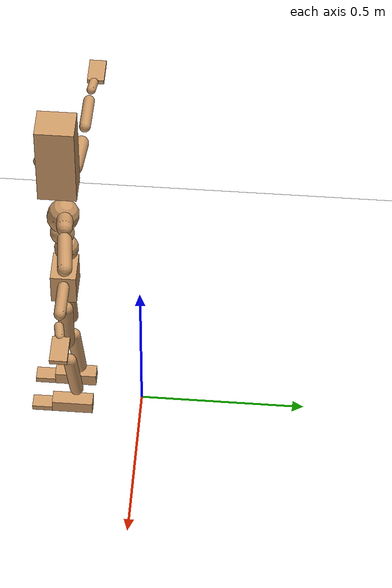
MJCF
<mujoco model="humanoid">
  <option integrator="implicitfast" />

  <visual>
    <global offwidth="1280" offheight="960" />
    <headlight active="1" ambient="0.34 0.34 0.34" diffuse="0.5 0.5 0.5" />
  </visual>

  <default>
    <joint damping="2" stiffness="2" armature="0.01" limited="true" solimplimit="0 .99 .01" />
    <geom condim="1" friction="0.7 0.005 0.0001" solimp=".99 .99 .003" solref="0.015 1" margin="0.001" rgba="0.8 0.6 .4 1" />
    <default class="smplcontact">
      <geom condim="3" friction="1. 0.005 0.0001" solref="0.015 1" solimp="0.98 0.98 0.001" priority="1" />
    </default>
    <default class="stiff_medium">
      <joint stiffness="10" />
    </default>
    <default class="stiff_medium_higher">
      <joint stiffness="50" />
    </default>
    <default class="stiff_high">
      <joint stiffness="100" />
    </default>
  </default>

  <asset>
    <texture type="skybox" builtin="gradient" rgb1="0.99 0.99 0.99" rgb2="0.608 0.828 0.892" width="100" />
    <texture builtin="flat" height="1278" mark="cross" markrgb="1 1 1" name="texgeom" random="0.01" rgb1="0.8 0.6 0.4" rgb2="0.8 0.6 0.4" type="cube" width="127" />
    <texture name="texplane" type="2d" builtin="checker" markrgb="1 1 1" rgb1="0.756 0.772 0.76" rgb2="0.6 0.6 0.6" width="100" height="100" />
    <material name="MatPlane" reflectance="0.5" texture="texplane" texrepeat="1 1" texuniform="true" />
    <material name="geom" texture="texgeom" texuniform="true" />
  </asset>

  <worldbody>
    <light name="tracking_light" pos="0 0 7" dir="0 0 -1" directional="true" cutoff="100" exponent="1" diffuse="1 1 1" specular="0.1 0.1 0.1" mode="trackcom" />
    <camera name="back" pos="0 3 2.4" xyaxes="-1 0 0 0 -1 2" mode="trackcom" />
    <camera name="side" pos="-3 0 2.4" xyaxes="0 -1 0 1 0 2" mode="trackcom" />
    <camera name="front_side" pos="-2.8 -2.8 0.8" xyaxes="0.5 -0.5 0 0.1 0.1 1" mode="trackcom" />
    <geom condim="3" name="floor" pos="0 0 0" rgba="1 1 1 1" size="100 100 .2" type="plane" material="MatPlane" />
    <body name="Pelvis" pos="-0.0018 -0.2233 0.564995" euler="90 0 0">
      <site name="Pelvis" size="0.01" />
      <freejoint name="Pelvis" />
      <geom type="box" pos="0 -0.00877437 -0.0025025" size="0.0486395 0.0523562 0.037765" quat="1.0000 0.0000 0.0000 0.0000" density="3165.830099" name="Pelvis" />
      <body name="L_Hip" pos="0.0316225 -0.0662791 -0.003094">
        <joint name="L_Hip_x" type="hinge" pos="0 0 0" axis="1 0 0" stiffness="10" range="-160.0 22.92" class="stiff_medium" damping="15" />
        <joint name="L_Hip_y" type="hinge" pos="0 0 0" axis="0 1 0" stiffness="10" range="-70.0 70.0" class="stiff_medium" damping="10" />
        <joint name="L_Hip_z" type="hinge" pos="0 0 0" axis="0 0 1" stiffness="10" range="-28.65 90.0" class="stiff_medium" damping="10" />
        <geom type="capsule" density="2040.816327" fromto="0.00413352 -0.0451067 -0.000541102 0.0164623 -0.180543 -0.00216489" size="0.0232101" name="L_Hip" />
        <body name="L_Knee" pos="0.0205958 -0.225649 -0.00270599">
          <joint name="L_Knee_x" type="hinge" pos="0 0 0" axis="1 0 0" range="-5.16 171.89" damping="8" />
          <joint name="L_Knee_y" type="hinge" pos="0 0 0" axis="0 1 0" range="-4.58 6.88" damping="8" />
          <joint name="L_Knee_z" type="hinge" pos="0 0 0" axis="0 0 1" range="-6.88 4.58" damping="8" />
          <geom type="capsule" density="1234.567901" fromto="-0.00163119 -0.0478698 -0.00524694 -0.0065627 -0.191485 -0.0210638" size="0.0204173" name="L_Knee" />
          <body name="L_Ankle" pos="-0.00819389 -0.239355 -0.0263108">
            <joint name="L_Ankle_x" type="hinge" pos="0 0 0" axis="1 0 0" range="-45.84 45.84" class="stiff_medium" damping="6" />
            <joint name="L_Ankle_y" type="hinge" pos="0 0 0" axis="0 1 0" range="-74.48 22.92" class="stiff_medium" damping="3" />
            <joint name="L_Ankle_z" type="hinge" pos="0 0 0" axis="0 0 1" range="-4.58 4.58" class="stiff_medium" damping="6" />
            <geom type="box" pos="0.0106015 -0.0108745 0.0176382" size="0.0219765 0.021112 0.0619525" quat="1.0000 0.0000 0.0000 0.0000" density="449.071558" name="L_Ankle" class="smplcontact" />
            <body name="L_Toe" pos="0.012012 -0.025389 0.0869522">
              <joint name="L_Toe_x" type="hinge" pos="0 0 0" axis="1 0 0" range="-91.67 22.92" />
              <joint name="L_Toe_y" type="hinge" pos="0 0 0" axis="0 1 0" range="-4.58 4.58" />
              <joint name="L_Toe_z" type="hinge" pos="0 0 0" axis="0 0 1" range="-4.58 4.58" />
              <geom type="box" pos="-0.001365 0.0025025 0.0180756" size="0.021749 0.0091 0.0361511" quat="1.0000 0.0000 0.0000 0.0000" density="423.206892" name="L_Toe" class="smplcontact" />
            </body>
          </body>
        </body>
      </body>
      <body name="R_Hip" pos="-0.0308035 -0.0656265 -0.0019565">
        <joint name="R_Hip_x" type="hinge" pos="0 0 0" axis="1 0 0" stiffness="10" range="-160.0 22.92" class="stiff_medium" damping="15" />
        <joint name="R_Hip_y" type="hinge" pos="0 0 0" axis="0 1 0" stiffness="10" range="-70.0 70.0" class="stiff_medium" damping="10" />
        <joint name="R_Hip_z" type="hinge" pos="0 0 0" axis="0 0 1" stiffness="10" range="-90.0 28.65" class="stiff_medium" damping="10" />
        <geom type="capsule" density="2040.816327" fromto="-0.0046153 -0.0460091 -0.00107493 -0.0183874 -0.184091 -0.00426236" size="0.0228704" name="R_Hip" />
        <body name="R_Knee" pos="-0.0230027 -0.2301 -0.00533729">
          <joint name="R_Knee_x" type="hinge" pos="0 0 0" axis="1 0 0" range="-5.16 171.89" damping="8" />
          <joint name="R_Knee_y" type="hinge" pos="0 0 0" axis="0 1 0" range="-6.88 4.58" damping="8" />
          <joint name="R_Knee_z" type="hinge" pos="0 0 0" axis="0 0 1" range="-4.58 6.88" damping="8" />
          <geom type="capsule" density="1234.567901" fromto="0.00190993 -0.0479339 -0.005098 0.00756312 -0.191669 -0.0203135" size="0.0204173" name="R_Knee" />
          <body name="R_Ankle" pos="0.00947305 -0.239603 -0.0254115">
            <joint name="R_Ankle_x" type="hinge" pos="0 0 0" axis="1 0 0" range="-45.84 45.84" class="stiff_medium" damping="6" />
            <joint name="R_Ankle_y" type="hinge" pos="0 0 0" axis="0 1 0" range="-22.92 74.48" class="stiff_medium" damping="3" />
            <joint name="R_Ankle_z" type="hinge" pos="0 0 0" axis="0 0 1" range="-4.58 4.58" class="stiff_medium" damping="6" />
            <geom type="box" pos="-0.009646 -0.007917 0.0186586" size="0.0219765 0.021749 0.0630458" quat="1.0000 0.0000 0.0000 0.0000" density="434.700981" name="R_Ankle" class="smplcontact" />
            <body name="R_Toe" pos="-0.011557 -0.0218855 0.0898676">
              <joint name="R_Toe_x" type="hinge" pos="0 0 0" axis="1 0 0" range="-91.67 22.92" />
              <joint name="R_Toe_y" type="hinge" pos="0 0 0" axis="0 1 0" range="-4.58 4.58" />
              <joint name="R_Toe_z" type="hinge" pos="0 0 0" axis="0 0 1" range="-4.58 4.58" />
              <geom type="box" pos="0.001911 0.0020475 0.016545" size="0.0217945 0.009828 0.0359325" quat="1.0000 0.0000 0.0000 0.0000" density="407.384095" name="R_Toe" class="smplcontact" />
            </body>
          </body>
        </body>
      </body>
      <body name="Torso" pos="-0.0011375 0.0790419 -0.0121485">
        <joint name="Torso_x" type="hinge" pos="0 0 0" axis="1 0 0" range="-25.78 57.3" class="stiff_medium" damping="15" />
        <joint name="Torso_y" type="hinge" pos="0 0 0" axis="0 1 0" range="-57.3 57.3" class="stiff_high" damping="20" />
        <joint name="Torso_z" type="hinge" pos="0 0 0" axis="0 0 1" range="-34.38 34.38" class="stiff_high" damping="20" />
        <geom type="capsule" density="2040.816327" fromto="0.00177028 0.0447061 0.000354055 0.0021379 0.054632 0.000427581" size="0.0354817" name="Torso" />
        <body name="Spine" pos="0.00390919 0.0994115 0.000781838">
          <joint name="Spine_x" type="hinge" pos="0 0 0" axis="1 0 0" stiffness="10" range="-25.78 57.3" class="stiff_medium" damping="15" />
          <joint name="Spine_y" type="hinge" pos="0 0 0" axis="0 1 0" stiffness="10" range="-57.3 57.3" class="stiff_high" damping="8" />
          <joint name="Spine_z" type="hinge" pos="0 0 0" axis="0 0 1" stiffness="20" range="-34.38 34.38" class="stiff_high" damping="12" />
          <geom type="capsule" density="2040.816327" fromto="0.000445413 0.0174703 0.00844322 0.000518938 0.0213671 0.0103549" size="0.0348357" name="Spine" />
          <body name="Chest" pos="0.000964351 0.0388374 0.0187981">
            <joint name="Chest_x" type="hinge" pos="0 0 0" axis="1 0 0" stiffness="10" range="-25.78 57.3" class="stiff_medium" damping="15" />
            <joint name="Chest_y" type="hinge" pos="0 0 0" axis="0 1 0" stiffness="10" range="-57.3 57.3" class="stiff_high" damping="8" />
            <joint name="Chest_z" type="hinge" pos="0 0 0" axis="0 0 1" stiffness="20" range="-34.38 34.38" class="stiff_high" damping="12" />
            <geom type="capsule" density="2040.816327" fromto="-0.000538815 0.0501242 -0.0128009 -0.00061234 0.0612266 -0.0156683" size="0.0462323" name="Chest" />
            <body name="Neck" pos="-0.00167444 0.156455 -0.0347125">
              <joint name="Neck_x" type="hinge" pos="0 0 0" axis="1 0 0" range="-28.65 57.3" class="stiff_medium_higher" damping="10" />
              <joint name="Neck_y" type="hinge" pos="0 0 0" axis="0 1 0" range="-40.11 40.11" class="stiff_medium_higher" damping="10" />
              <joint name="Neck_z" type="hinge" pos="0 0 0" axis="0 0 1" range="-40.11 40.11" class="stiff_medium_higher" damping="10" />
              <geom type="capsule" density="1000" fromto="0.000738218 0.00947903 0.00750125 0.00299766 0.0379043 0.0299499" size="0.0199383" name="Neck" />
              <body name="Head" pos="0.00378067 0.0473715 0.0373961">
                <joint name="Head_x" type="hinge" pos="0 0 0" axis="1 0 0" range="-28.65 57.3" class="stiff_medium_higher" damping="2" />
                <joint name="Head_y" type="hinge" pos="0 0 0" axis="0 1 0" range="-40.11 40.11" class="stiff_medium_higher" damping="2" />
                <joint name="Head_z" type="hinge" pos="0 0 0" axis="0 0 1" range="-40.11 40.11" class="stiff_medium_higher" damping="2" />
                <geom type="box" pos="-0.00307482 0.102213 -0.00849236" size="0.0443653 0.134651 0.0556396" quat="1.0000 0.0000 0.0000 0.0000" density="1018.069894" name="Head" />
                <geom type="capsule" name="nose" size="0.014642 0.007321" pos="0 0.0816774 0.036605" quat="1 0 0 0" mass="0" contype="0" conaffinity="0" />
              </body>
            </body>
            <body name="L_Thorax" pos="0.0361373 0.0895219 -0.0243524">
              <joint name="L_Thorax_x" type="hinge" pos="0 0 0" axis="1 0 0" range="-10.89 4.58" class="stiff_medium_higher" damping="20" />
              <joint name="L_Thorax_y" type="hinge" pos="0 0 0" axis="0 1 0" range="-28.65 17.19" class="stiff_medium_higher" damping="20" />
              <joint name="L_Thorax_z" type="hinge" pos="0 0 0" axis="0 0 1" range="-31.51 40.11" class="stiff_medium_higher" damping="20" />
              <geom type="capsule" density="1000" fromto="0.0130174 0.00436296 -0.00127855 0.0520672 0.0174511 -0.0050691" size="0.0233825" name="L_Thorax" />
              <body name="L_Shoulder" pos="0.0650845 0.021814 -0.00634765">
                <joint name="L_Shoulder_x" type="hinge" pos="0 0 0" axis="1 0 0" range="-97.4 97.4" class="stiff_medium" damping="6" />
                <joint name="L_Shoulder_y" type="hinge" pos="0 0 0" axis="0 1 0" range="-108.86 80.21" class="stiff_medium" damping="6" />
                <joint name="L_Shoulder_z" type="hinge" pos="0 0 0" axis="0 0 1" range="-97.4 85.94" class="stiff_medium" damping="6" />
                <geom type="capsule" density="1000" fromto="0.0339231 -0.00168279 -0.00359407 0.135755 -0.0066502 -0.0143786" size="0.0212022" name="L_Shoulder" />
                <body name="L_Elbow" pos="0.169678 -0.00833299 -0.0179726">
                  <joint name="L_Elbow_x" type="hinge" pos="0 0 0" axis="1 0 0" range="-17.19 4.58" damping="5" />
                  <joint name="L_Elbow_y" type="hinge" pos="0 0 0" axis="0 1 0" range="-180.0 17.19" damping="5" />
                  <joint name="L_Elbow_z" type="hinge" pos="0 0 0" axis="0 0 1" range="-100.84 4.58" damping="5" />
                  <geom type="capsule" density="1000" fromto="0.0325496 0.00117591 -0.000138762 0.130329 0.00470538 -0.000596287" size="0.0166091" name="L_Elbow" />
                  <body name="L_Wrist" pos="0.162879 0.00588129 -0.000776059">
                    <joint name="L_Wrist_x" type="hinge" pos="0 0 0" axis="1 0 0" range="-180.0 22.92" />
                    <joint name="L_Wrist_y" type="hinge" pos="0 0 0" axis="0 1 0" range="-17.19 17.19" />
                    <joint name="L_Wrist_z" type="hinge" pos="0 0 0" axis="0 0 1" range="-22.92 22.92" />
                    <geom type="capsule" density="1000" fromto="0.0109798 -0.00105381 -0.00196068 0.0439216 -0.00425649 -0.00784314" size="0.0130412" name="L_Wrist" class="smplcontact" />
                    <body name="L_Hand" pos="0.0548995 -0.00535112 -0.00976248">
                      <joint name="L_Hand_x" type="hinge" pos="0 0 0" axis="1 0 0" range="-17.19 17.19" />
                      <joint name="L_Hand_y" type="hinge" pos="0 0 0" axis="0 1 0" range="-51.57 51.57" />
                      <joint name="L_Hand_z" type="hinge" pos="0 0 0" axis="0 0 1" range="-91.67 91.67" />
                      <geom type="box" pos="0.0357501 0.000455 -0.002639" size="0.0424216 0.007189 0.024479" quat="1.0000 0.0000 0.0000 0.0000" density="400.552564" name="L_Hand" class="smplcontact" />
                    </body>
                  </body>
                </body>
              </body>
            </body>
            <body name="R_Thorax" pos="-0.0379624 0.0880108 -0.026384">
              <joint name="R_Thorax_x" type="hinge" pos="0 0 0" axis="1 0 0" range="-10.89 4.58" class="stiff_medium_higher" damping="20" />
              <joint name="R_Thorax_y" type="hinge" pos="0 0 0" axis="0 1 0" range="-17.19 28.65" class="stiff_medium_higher" damping="20" />
              <joint name="R_Thorax_z" type="hinge" pos="0 0 0" axis="0 0 1" range="-40.11 31.51" class="stiff_medium_higher" damping="20" />
              <geom type="capsule" density="1000" fromto="-0.013731 0.00464853 -0.00129616 -0.0549264 0.0185949 -0.00522975" size="0.0229337" name="R_Thorax" />
              <body name="R_Shoulder" pos="-0.0686655 0.023291 -0.00652668">
                <joint name="R_Shoulder_x" type="hinge" pos="0 0 0" axis="1 0 0" range="-97.4 97.4" class="stiff_medium" damping="6" />
                <joint name="R_Shoulder_y" type="hinge" pos="0 0 0" axis="0 1 0" range="-80.21 108.86" class="stiff_medium" damping="6" />
                <joint name="R_Shoulder_z" type="hinge" pos="0 0 0" axis="0 0 1" range="-85.94 97.4" class="stiff_medium" damping="6" />
                <geom type="capsule" density="1000" fromto="-0.0331391 -0.00175583 -0.00280113 -0.132683 -0.00698469 -0.0111673" size="0.0217763" name="R_Shoulder" />
                <body name="R_Elbow" pos="-0.165821 -0.00869944 -0.0139683">
                  <joint name="R_Elbow_x" type="hinge" pos="0 0 0" axis="1 0 0" range="-17.19 4.58" damping="5" />
                  <joint name="R_Elbow_y" type="hinge" pos="0 0 0" axis="0 1 0" range="-17.19 180.0" damping="5" />
                  <joint name="R_Elbow_z" type="hinge" pos="0 0 0" axis="0 0 1" range="-4.58 100.84" damping="5" />
                  <geom type="capsule" density="1000" fromto="-0.0333998 0.00103004 -0.000719327 -0.133467 0.00403663 -0.00287623" size="0.0167321" name="R_Elbow" />
                  <body name="R_Wrist" pos="-0.166867 0.00506668 -0.00363658">
                    <joint name="R_Wrist_x" type="hinge" pos="0 0 0" axis="1 0 0" range="-180.0 22.92" />
                    <joint name="R_Wrist_y" type="hinge" pos="0 0 0" axis="0 1 0" range="-17.19 17.19" />
                    <joint name="R_Wrist_z" type="hinge" pos="0 0 0" axis="0 0 1" range="-22.92 22.92" />
                    <geom type="capsule" density="1000" fromto="-0.0110465 -0.000791894 -0.00136353 -0.0442497 -0.00321024 -0.00541589" size="0.0133693" name="R_Wrist" class="smplcontact" />
                    <body name="R_Hand" pos="-0.0552933 -0.00400192 -0.00673806">
                      <joint name="R_Hand_x" type="hinge" pos="0 0 0" axis="1 0 0" range="-17.19 17.19" />
                      <joint name="R_Hand_y" type="hinge" pos="0 0 0" axis="0 1 0" range="-51.57 51.57" />
                      <joint name="R_Hand_z" type="hinge" pos="0 0 0" axis="0 0 1" range="-91.67 91.67" />
                      <geom type="box" pos="-0.0335022 -0.0004095 -0.0035945" size="0.0412613 0.007462 0.024843" quat="1.0000 0.0000 0.0000 0.0000" density="403.679611" name="R_Hand" class="smplcontact" />
                    </body>
                  </body>
                </body>
              </body>
            </body>
          </body>
        </body>
      </body>
    </body>
  </worldbody>
  <actuator>
    <general name="L_Hip_x" joint="L_Hip_x" biastype="affine" gainprm="287.33006409732246" biasprm="-215.3247604770444 -180 -2.0" ctrllimited="true" ctrlrange="-1 1" forcerange="-360 360" />
    <general name="L_Hip_y" joint="L_Hip_y" biastype="affine" gainprm="219.9114857512855" biasprm="0.0 -180 -2.0" ctrllimited="true" ctrlrange="-1 1" forcerange="-360 360" />
    <general name="L_Hip_z" joint="L_Hip_z" biastype="affine" gainprm="186.3749841742145" biasprm="96.3683546488669 -180 -2.0" ctrllimited="true" ctrlrange="-1 1" forcerange="-360 360" />
    <general name="L_Knee_x" joint="L_Knee_x" biastype="affine" gainprm="278.10948965903646" biasprm="261.8988715665131 -180 -2.0" ctrllimited="true" ctrlrange="-1 1" forcerange="-360 360" />
    <general name="L_Knee_y" joint="L_Knee_y" biastype="affine" gainprm="18.001325905069514" biasprm="3.612831551628262 -180 -2.0" ctrllimited="true" ctrlrange="-1 1" forcerange="-360 360" />
    <general name="L_Knee_z" joint="L_Knee_z" biastype="affine" gainprm="18.001325905069514" biasprm="-3.612831551628262 -180 -2.0" ctrllimited="true" ctrlrange="-1 1" forcerange="-360 360" />
    <general name="L_Ankle_x" joint="L_Ankle_x" biastype="affine" gainprm="72.00530362027807" biasprm="0.0 -90 -2.0" ctrllimited="true" ctrlrange="-1 1" forcerange="-180 180" />
    <general name="L_Ankle_y" joint="L_Ankle_y" biastype="affine" gainprm="76.49778111491148" biasprm="-40.49512930477244 -90 -2.0" ctrllimited="true" ctrlrange="-1 1" forcerange="-180 180" />
    <general name="L_Ankle_z" joint="L_Ankle_z" biastype="affine" gainprm="7.1942471767206255" biasprm="0.0 -90 -2.0" ctrllimited="true" ctrlrange="-1 1" forcerange="-180 180" />
    <general name="L_Toe_x" joint="L_Toe_x" biastype="affine" gainprm="71.99902043497087" biasprm="-43.19689898685965 -72 -0.8" ctrllimited="true" ctrlrange="-1 1" forcerange="-144 144" />
    <general name="L_Toe_y" joint="L_Toe_y" biastype="affine" gainprm="5.755397741376501" biasprm="0.0 -72 -0.8" ctrllimited="true" ctrlrange="-1 1" forcerange="-144 144" />
    <general name="L_Toe_z" joint="L_Toe_z" biastype="affine" gainprm="5.755397741376501" biasprm="0.0 -72 -0.8" ctrllimited="true" ctrlrange="-1 1" forcerange="-144 144" />
    <general name="R_Hip_x" joint="R_Hip_x" biastype="affine" gainprm="287.33006409732246" biasprm="-215.3247604770444 -180 -2.0" ctrllimited="true" ctrlrange="-1 1" forcerange="-360 360" />
    <general name="R_Hip_y" joint="R_Hip_y" biastype="affine" gainprm="219.9114857512855" biasprm="0.0 -180 -2.0" ctrllimited="true" ctrlrange="-1 1" forcerange="-360 360" />
    <general name="R_Hip_z" joint="R_Hip_z" biastype="affine" gainprm="186.3749841742145" biasprm="-96.3683546488669 -180 -2.0" ctrllimited="true" ctrlrange="-1 1" forcerange="-360 360" />
    <general name="R_Knee_x" joint="R_Knee_x" biastype="affine" gainprm="278.10948965903646" biasprm="261.8988715665131 -180 -2.0" ctrllimited="true" ctrlrange="-1 1" forcerange="-360 360" />
    <general name="R_Knee_y" joint="R_Knee_y" biastype="affine" gainprm="18.001325905069514" biasprm="-3.612831551628262 -180 -2.0" ctrllimited="true" ctrlrange="-1 1" forcerange="-360 360" />
    <general name="R_Knee_z" joint="R_Knee_z" biastype="affine" gainprm="18.001325905069514" biasprm="3.612831551628262 -180 -2.0" ctrllimited="true" ctrlrange="-1 1" forcerange="-360 360" />
    <general name="R_Ankle_x" joint="R_Ankle_x" biastype="affine" gainprm="72.00530362027807" biasprm="0.0 -90 -2.0" ctrllimited="true" ctrlrange="-1 1" forcerange="-180 180" />
    <general name="R_Ankle_y" joint="R_Ankle_y" biastype="affine" gainprm="76.49778111491148" biasprm="40.49512930477244 -90 -2.0" ctrllimited="true" ctrlrange="-1 1" forcerange="-180 180" />
    <general name="R_Ankle_z" joint="R_Ankle_z" biastype="affine" gainprm="7.1942471767206255" biasprm="0.0 -90 -2.0" ctrllimited="true" ctrlrange="-1 1" forcerange="-180 180" />
    <general name="R_Toe_x" joint="R_Toe_x" biastype="affine" gainprm="71.99902043497087" biasprm="-43.19689898685965 -72 -0.8" ctrllimited="true" ctrlrange="-1 1" forcerange="-144 144" />
    <general name="R_Toe_y" joint="R_Toe_y" biastype="affine" gainprm="5.755397741376501" biasprm="0.0 -72 -0.8" ctrllimited="true" ctrlrange="-1 1" forcerange="-144 144" />
    <general name="R_Toe_z" joint="R_Toe_z" biastype="affine" gainprm="5.755397741376501" biasprm="0.0 -72 -0.8" ctrllimited="true" ctrlrange="-1 1" forcerange="-144 144" />
    <general name="Torso_x" joint="Torso_x" biastype="affine" gainprm="174.00234510682668" biasprm="66.0153336274335 -240 -4.0" ctrllimited="true" ctrlrange="-1 1" forcerange="-360 360" />
    <general name="Torso_y" joint="Torso_y" biastype="affine" gainprm="240.0176787342602" biasprm="0.0 -240 -4.0" ctrllimited="true" ctrlrange="-1 1" forcerange="-360 360" />
    <general name="Torso_z" joint="Torso_z" biastype="affine" gainprm="144.01060724055614" biasprm="0.0 -240 -4.0" ctrllimited="true" ctrlrange="-1 1" forcerange="-360 360" />
    <general name="Spine_x" joint="Spine_x" biastype="affine" gainprm="174.00234510682668" biasprm="66.0153336274335 -240 -4.0" ctrllimited="true" ctrlrange="-1 1" forcerange="-360 360" />
    <general name="Spine_y" joint="Spine_y" biastype="affine" gainprm="240.0176787342602" biasprm="0.0 -240 -4.0" ctrllimited="true" ctrlrange="-1 1" forcerange="-360 360" />
    <general name="Spine_z" joint="Spine_z" biastype="affine" gainprm="144.01060724055614" biasprm="0.0 -240 -4.0" ctrllimited="true" ctrlrange="-1 1" forcerange="-360 360" />
    <general name="Chest_x" joint="Chest_x" biastype="affine" gainprm="174.00234510682668" biasprm="66.0153336274335 -240 -4.0" ctrllimited="true" ctrlrange="-1 1" forcerange="-360 360" />
    <general name="Chest_y" joint="Chest_y" biastype="affine" gainprm="240.0176787342602" biasprm="0.0 -240 -4.0" ctrllimited="true" ctrlrange="-1 1" forcerange="-360 360" />
    <general name="Chest_z" joint="Chest_z" biastype="affine" gainprm="144.01060724055614" biasprm="0.0 -240 -4.0" ctrllimited="true" ctrlrange="-1 1" forcerange="-360 360" />
    <general name="Neck_x" joint="Neck_x" biastype="affine" gainprm="27.00198885760427" biasprm="9.000662952534757 -36 -0.8" ctrllimited="true" ctrlrange="-1 1" forcerange="-72 72" />
    <general name="Neck_y" joint="Neck_y" biastype="affine" gainprm="25.20185626709732" biasprm="0.0 -36 -0.8" ctrllimited="true" ctrlrange="-1 1" forcerange="-72 72" />
    <general name="Neck_z" joint="Neck_z" biastype="affine" gainprm="25.20185626709732" biasprm="0.0 -36 -0.8" ctrllimited="true" ctrlrange="-1 1" forcerange="-72 72" />
    <general name="Head_x" joint="Head_x" biastype="affine" gainprm="18.001325905069514" biasprm="6.000441968356505 -24 -0.8" ctrllimited="true" ctrlrange="-1 1" forcerange="-48 48" />
    <general name="Head_y" joint="Head_y" biastype="affine" gainprm="16.801237511398213" biasprm="0.0 -24 -0.8" ctrllimited="true" ctrlrange="-1 1" forcerange="-48 48" />
    <general name="Head_z" joint="Head_z" biastype="affine" gainprm="16.801237511398213" biasprm="0.0 -24 -0.8" ctrllimited="true" ctrlrange="-1 1" forcerange="-48 48" />
    <general name="L_Thorax_x" joint="L_Thorax_x" biastype="affine" gainprm="16.200146117011364" biasprm="-6.6078165480505335 -120 -1.6" ctrllimited="true" ctrlrange="-1 1" forcerange="-240 240" />
    <general name="L_Thorax_y" joint="L_Thorax_y" biastype="affine" gainprm="48.00353574685204" biasprm="-12.00088393671301 -120 -1.6" ctrllimited="true" ctrlrange="-1 1" forcerange="-240 240" />
    <general name="L_Thorax_z" joint="L_Thorax_z" biastype="affine" gainprm="75.00028861670033" biasprm="9.00589894029074 -120 -1.6" ctrllimited="true" ctrlrange="-1 1" forcerange="-240 240" />
    <general name="L_Shoulder_x" joint="L_Shoulder_x" biastype="affine" gainprm="81.5976331892389" biasprm="0.0 -48 -1.6" ctrllimited="true" ctrlrange="-1 1" forcerange="-96 96" />
    <general name="L_Shoulder_y" joint="L_Shoulder_y" biastype="affine" gainprm="79.19745640189629" biasprm="-12.00088393671301 -48 -1.6" ctrllimited="true" ctrlrange="-1 1" forcerange="-96 96" />
    <general name="L_Shoulder_z" joint="L_Shoulder_z" biastype="affine" gainprm="76.79727961455369" biasprm="-4.800353574685214 -48 -1.6" ctrllimited="true" ctrlrange="-1 1" forcerange="-96 96" />
    <general name="L_Elbow_x" joint="L_Elbow_x" biastype="affine" gainprm="13.67849441372996" biasprm="-7.923096672353461 -72 -0.8" ctrllimited="true" ctrlrange="-1 1" forcerange="-144 144" />
    <general name="L_Elbow_y" joint="L_Elbow_y" biastype="affine" gainprm="123.89813107227425" biasprm="-102.29653998619085 -72 -0.8" ctrllimited="true" ctrlrange="-1 1" forcerange="-144 144" />
    <general name="L_Elbow_z" joint="L_Elbow_z" biastype="affine" gainprm="66.23733950828719" biasprm="-60.4819417669107 -72 -0.8" ctrllimited="true" ctrlrange="-1 1" forcerange="-144 144" />
    <general name="L_Wrist_x" joint="L_Wrist_x" biastype="affine" gainprm="21.24973270888136" biasprm="-16.449379134196157 -12 -0.8" ctrllimited="true" ctrlrange="-1 1" forcerange="-24 24" />
    <general name="L_Wrist_y" joint="L_Wrist_y" biastype="affine" gainprm="3.6002651810139037" biasprm="0.0 -12 -0.8" ctrllimited="true" ctrlrange="-1 1" forcerange="-24 24" />
    <general name="L_Wrist_z" joint="L_Wrist_z" biastype="affine" gainprm="4.800353574685205" biasprm="0.0 -12 -0.8" ctrllimited="true" ctrlrange="-1 1" forcerange="-24 24" />
    <general name="L_Hand_x" joint="L_Hand_x" biastype="affine" gainprm="3.6002651810139037" biasprm="0.0 -12 -0.8" ctrllimited="true" ctrlrange="-1 1" forcerange="-24 24" />
    <general name="L_Hand_y" joint="L_Hand_y" biastype="affine" gainprm="10.800795543041708" biasprm="0.0 -12 -0.8" ctrllimited="true" ctrlrange="-1 1" forcerange="-24 24" />
    <general name="L_Hand_z" joint="L_Hand_z" biastype="affine" gainprm="19.199319903638422" biasprm="0.0 -12 -0.8" ctrllimited="true" ctrlrange="-1 1" forcerange="-24 24" />
    <general name="R_Thorax_x" joint="R_Thorax_x" biastype="affine" gainprm="16.200146117011364" biasprm="-6.6078165480505335 -120 -1.6" ctrllimited="true" ctrlrange="-1 1" forcerange="-240 240" />
    <general name="R_Thorax_y" joint="R_Thorax_y" biastype="affine" gainprm="48.00353574685204" biasprm="12.000883936713002 -120 -1.6" ctrllimited="true" ctrlrange="-1 1" forcerange="-240 240" />
    <general name="R_Thorax_z" joint="R_Thorax_z" biastype="affine" gainprm="75.00028861670033" biasprm="-9.00589894029074 -120 -1.6" ctrllimited="true" ctrlrange="-1 1" forcerange="-240 240" />
    <general name="R_Shoulder_x" joint="R_Shoulder_x" biastype="affine" gainprm="81.5976331892389" biasprm="0.0 -48 -1.6" ctrllimited="true" ctrlrange="-1 1" forcerange="-96 96" />
    <general name="R_Shoulder_y" joint="R_Shoulder_y" biastype="affine" gainprm="79.19745640189629" biasprm="12.00088393671301 -48 -1.6" ctrllimited="true" ctrlrange="-1 1" forcerange="-96 96" />
    <general name="R_Shoulder_z" joint="R_Shoulder_z" biastype="affine" gainprm="76.79727961455369" biasprm="4.800353574685204 -48 -1.6" ctrllimited="true" ctrlrange="-1 1" forcerange="-96 96" />
    <general name="R_Elbow_x" joint="R_Elbow_x" biastype="affine" gainprm="13.67849441372996" biasprm="-7.923096672353461 -72 -0.8" ctrllimited="true" ctrlrange="-1 1" forcerange="-144 144" />
    <general name="R_Elbow_y" joint="R_Elbow_y" biastype="affine" gainprm="123.89813107227425" biasprm="102.29653998619085 -72 -0.8" ctrllimited="true" ctrlrange="-1 1" forcerange="-144 144" />
    <general name="R_Elbow_z" joint="R_Elbow_z" biastype="affine" gainprm="66.23733950828719" biasprm="60.481941766910694 -72 -0.8" ctrllimited="true" ctrlrange="-1 1" forcerange="-144 144" />
    <general name="R_Wrist_x" joint="R_Wrist_x" biastype="affine" gainprm="21.24973270888136" biasprm="-16.449379134196157 -12 -0.8" ctrllimited="true" ctrlrange="-1 1" forcerange="-24 24" />
    <general name="R_Wrist_y" joint="R_Wrist_y" biastype="affine" gainprm="3.6002651810139037" biasprm="0.0 -12 -0.8" ctrllimited="true" ctrlrange="-1 1" forcerange="-24 24" />
    <general name="R_Wrist_z" joint="R_Wrist_z" biastype="affine" gainprm="4.800353574685205" biasprm="0.0 -12 -0.8" ctrllimited="true" ctrlrange="-1 1" forcerange="-24 24" />
    <general name="R_Hand_x" joint="R_Hand_x" biastype="affine" gainprm="3.6002651810139037" biasprm="0.0 -12 -0.8" ctrllimited="true" ctrlrange="-1 1" forcerange="-24 24" />
    <general name="R_Hand_y" joint="R_Hand_y" biastype="affine" gainprm="10.800795543041708" biasprm="0.0 -12 -0.8" ctrllimited="true" ctrlrange="-1 1" forcerange="-24 24" />
    <general name="R_Hand_z" joint="R_Hand_z" biastype="affine" gainprm="19.199319903638422" biasprm="0.0 -12 -0.8" ctrllimited="true" ctrlrange="-1 1" forcerange="-24 24" />
  </actuator>
  <contact>
    <exclude body1="Torso" body2="Chest" />
    <exclude body1="Head" body2="Chest" />
    <exclude body1="R_Knee" body2="R_Toe" />
    <exclude body1="R_Knee" body2="L_Ankle" />
    <exclude body1="R_Knee" body2="L_Toe" />
    <exclude body1="L_Knee" body2="L_Toe" />
    <exclude body1="L_Knee" body2="R_Ankle" />
    <exclude body1="L_Knee" body2="R_Toe" />
    <exclude body1="L_Shoulder" body2="Chest" />
    <exclude body1="R_Shoulder" body2="Chest" />
  </contact>
  <sensor>
    <framelinvel name="sensor_Pelvis_framelinvel" objtype="xbody" objname="Pelvis" />
    <framelinvel name="sensor_L_Hip_framelinvel" objtype="xbody" objname="L_Hip" />
    <framelinvel name="sensor_L_Knee_framelinvel" objtype="xbody" objname="L_Knee" />
    <framelinvel name="sensor_L_Ankle_framelinvel" objtype="xbody" objname="L_Ankle" />
    <framelinvel name="sensor_L_Toe_framelinvel" objtype="xbody" objname="L_Toe" />
    <framelinvel name="sensor_R_Hip_framelinvel" objtype="xbody" objname="R_Hip" />
    <framelinvel name="sensor_R_Knee_framelinvel" objtype="xbody" objname="R_Knee" />
    <framelinvel name="sensor_R_Ankle_framelinvel" objtype="xbody" objname="R_Ankle" />
    <framelinvel name="sensor_R_Toe_framelinvel" objtype="xbody" objname="R_Toe" />
    <framelinvel name="sensor_Torso_framelinvel" objtype="xbody" objname="Torso" />
    <framelinvel name="sensor_Spine_framelinvel" objtype="xbody" objname="Spine" />
    <framelinvel name="sensor_Chest_framelinvel" objtype="xbody" objname="Chest" />
    <framelinvel name="sensor_Neck_framelinvel" objtype="xbody" objname="Neck" />
    <framelinvel name="sensor_Head_framelinvel" objtype="xbody" objname="Head" />
    <framelinvel name="sensor_L_Thorax_framelinvel" objtype="xbody" objname="L_Thorax" />
    <framelinvel name="sensor_L_Shoulder_framelinvel" objtype="xbody" objname="L_Shoulder" />
    <framelinvel name="sensor_L_Elbow_framelinvel" objtype="xbody" objname="L_Elbow" />
    <framelinvel name="sensor_L_Wrist_framelinvel" objtype="xbody" objname="L_Wrist" />
    <framelinvel name="sensor_L_Hand_framelinvel" objtype="xbody" objname="L_Hand" />
    <framelinvel name="sensor_R_Thorax_framelinvel" objtype="xbody" objname="R_Thorax" />
    <framelinvel name="sensor_R_Shoulder_framelinvel" objtype="xbody" objname="R_Shoulder" />
    <framelinvel name="sensor_R_Elbow_framelinvel" objtype="xbody" objname="R_Elbow" />
    <framelinvel name="sensor_R_Wrist_framelinvel" objtype="xbody" objname="R_Wrist" />
    <framelinvel name="sensor_R_Hand_framelinvel" objtype="xbody" objname="R_Hand" />
    <frameangvel name="sensor_Pelvis_frameangvel" objtype="xbody" objname="Pelvis" />
    <frameangvel name="sensor_L_Hip_frameangvel" objtype="xbody" objname="L_Hip" />
    <frameangvel name="sensor_L_Knee_frameangvel" objtype="xbody" objname="L_Knee" />
    <frameangvel name="sensor_L_Ankle_frameangvel" objtype="xbody" objname="L_Ankle" />
    <frameangvel name="sensor_L_Toe_frameangvel" objtype="xbody" objname="L_Toe" />
    <frameangvel name="sensor_R_Hip_frameangvel" objtype="xbody" objname="R_Hip" />
    <frameangvel name="sensor_R_Knee_frameangvel" objtype="xbody" objname="R_Knee" />
    <frameangvel name="sensor_R_Ankle_frameangvel" objtype="xbody" objname="R_Ankle" />
    <frameangvel name="sensor_R_Toe_frameangvel" objtype="xbody" objname="R_Toe" />
    <frameangvel name="sensor_Torso_frameangvel" objtype="xbody" objname="Torso" />
    <frameangvel name="sensor_Spine_frameangvel" objtype="xbody" objname="Spine" />
    <frameangvel name="sensor_Chest_frameangvel" objtype="xbody" objname="Chest" />
    <frameangvel name="sensor_Neck_frameangvel" objtype="xbody" objname="Neck" />
    <frameangvel name="sensor_Head_frameangvel" objtype="xbody" objname="Head" />
    <frameangvel name="sensor_L_Thorax_frameangvel" objtype="xbody" objname="L_Thorax" />
    <frameangvel name="sensor_L_Shoulder_frameangvel" objtype="xbody" objname="L_Shoulder" />
    <frameangvel name="sensor_L_Elbow_frameangvel" objtype="xbody" objname="L_Elbow" />
    <frameangvel name="sensor_L_Wrist_frameangvel" objtype="xbody" objname="L_Wrist" />
    <frameangvel name="sensor_L_Hand_frameangvel" objtype="xbody" objname="L_Hand" />
    <frameangvel name="sensor_R_Thorax_frameangvel" objtype="xbody" objname="R_Thorax" />
    <frameangvel name="sensor_R_Shoulder_frameangvel" objtype="xbody" objname="R_Shoulder" />
    <frameangvel name="sensor_R_Elbow_frameangvel" objtype="xbody" objname="R_Elbow" />
    <frameangvel name="sensor_R_Wrist_frameangvel" objtype="xbody" objname="R_Wrist" />
    <frameangvel name="sensor_R_Hand_frameangvel" objtype="xbody" objname="R_Hand" />
    <subtreelinvel name="Chest_subtreelinvel" body="Chest" />
    <gyro name="Pelvis_gyro" site="Pelvis" />
  </sensor>
</mujoco>
